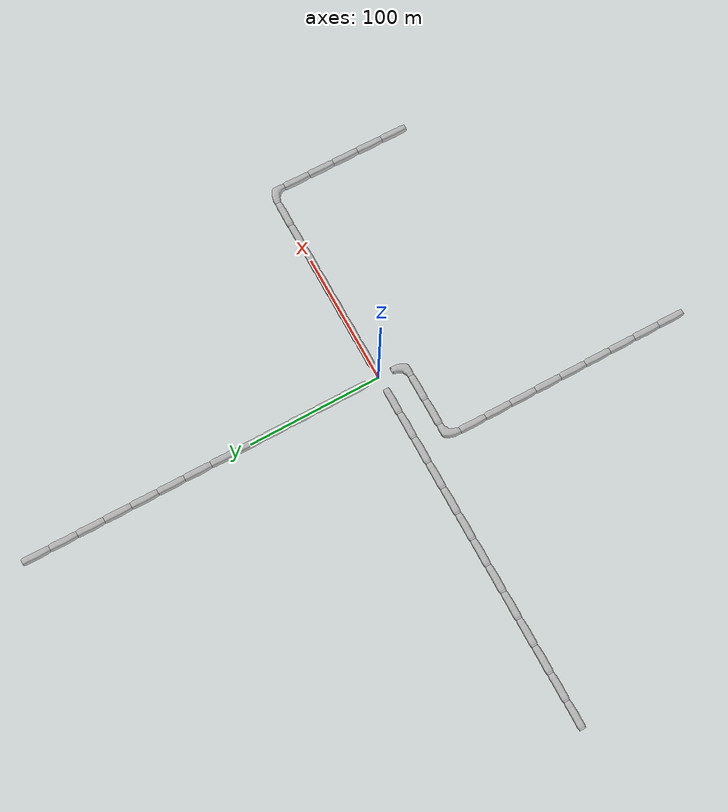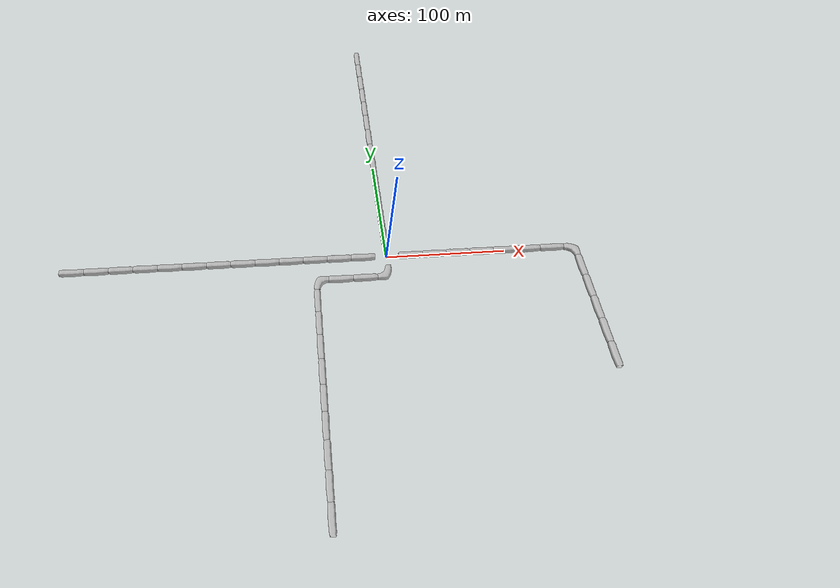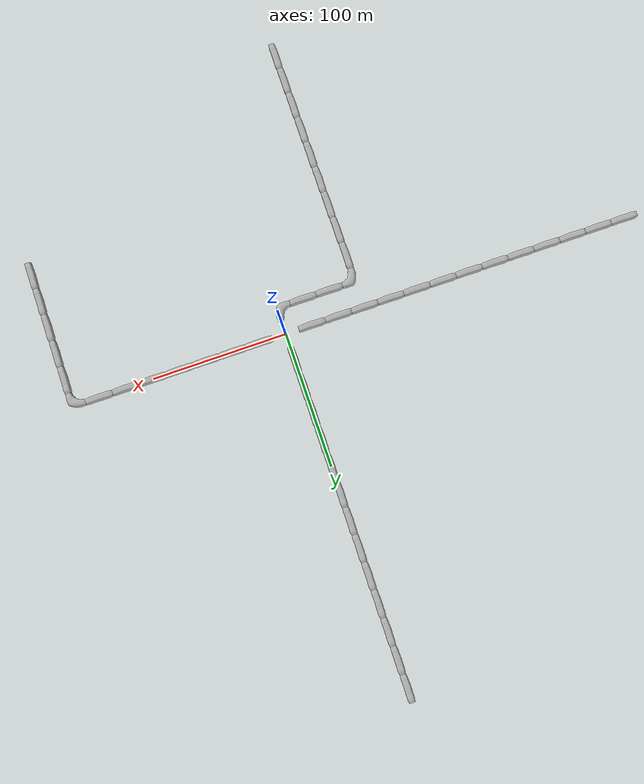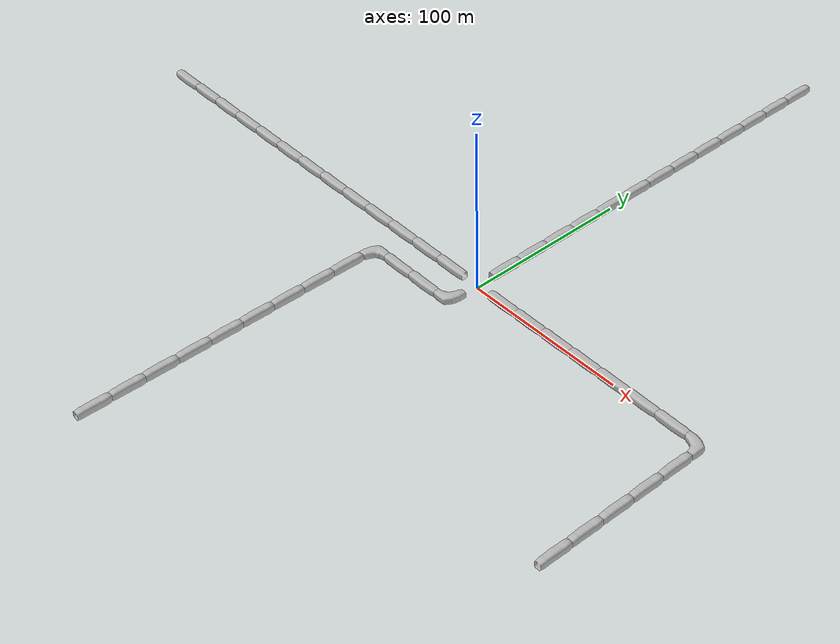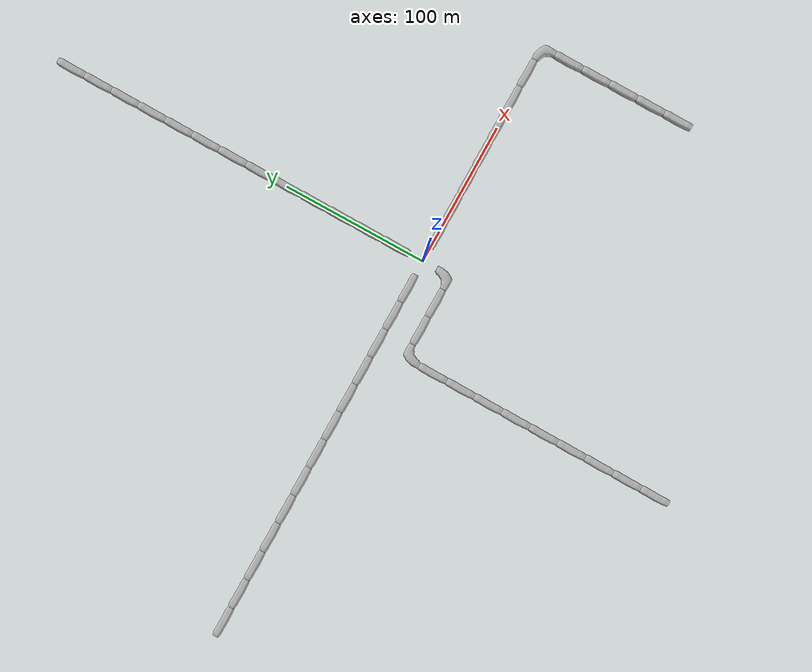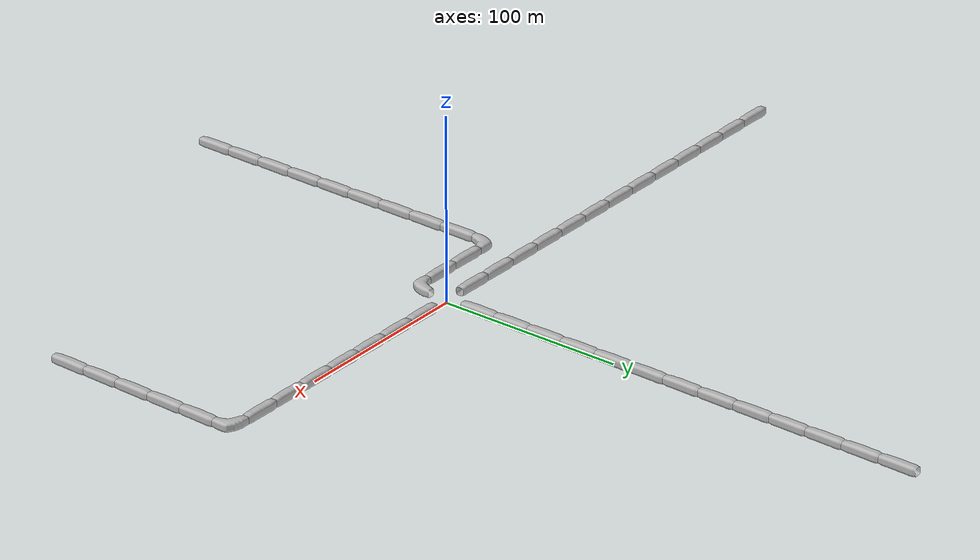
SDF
<sdf version="1.6">
 <world name="cave_1000_8">
  <include>
   <static>true</static>
   <name>cave_1_0</name>
   <pose>20 0 0 0 0 1.5707963267948966</pose>
   <uri>model://cave_straight_20m</uri>
  </include>
  <include>
   <static>true</static>
   <name>cave_2_0</name>
   <pose>40 0 0 0 0 1.5707963267948966</pose>
   <uri>model://cave_straight_20m</uri>
  </include>
  <include>
   <static>true</static>
   <name>cave_3_0</name>
   <pose>60 0 0 0 0 1.5707963267948966</pose>
   <uri>model://cave_straight_20m</uri>
  </include>
  <include>
   <static>true</static>
   <name>cave_4_0</name>
   <pose>80 0 0 0 0 1.5707963267948966</pose>
   <uri>model://cave_straight_20m</uri>
  </include>
  <include>
   <static>true</static>
   <name>cave_5_0</name>
   <pose>100 0 0 0 0 1.5707963267948966</pose>
   <uri>model://cave_straight_20m</uri>
  </include>
  <include>
   <static>true</static>
   <name>cave_6_0</name>
   <pose>120 0 0 0 0 1.5707963267948966</pose>
   <uri>model://cave_straight_20m</uri>
  </include>
  <include>
   <static>true</static>
   <name>cave_7_0</name>
   <pose>140 0 0 0 0 1.5707963267948966</pose>
   <uri>model://cave_straight_20m</uri>
  </include>
  <include>
   <static>true</static>
   <name>cave_8_0</name>
   <pose>160 0 0 0 0 3.141592653589793</pose>
   <uri>model://cave_L_20m</uri>
  </include>
  <include>
   <static>true</static>
   <name>cave_8_-1</name>
   <pose>160 -20 0 0 0 0.0</pose>
   <uri>model://cave_straight_20m</uri>
  </include>
  <include>
   <static>true</static>
   <name>cave_8_-2</name>
   <pose>160 -40 0 0 0 0.0</pose>
   <uri>model://cave_straight_20m</uri>
  </include>
  <include>
   <static>true</static>
   <name>cave_8_-3</name>
   <pose>160 -60 0 0 0 0.0</pose>
   <uri>model://cave_straight_20m</uri>
  </include>
  <include>
   <static>true</static>
   <name>cave_8_-4</name>
   <pose>160 -80 0 0 0 0.0</pose>
   <uri>model://cave_straight_20m</uri>
  </include>
  <include>
   <static>true</static>
   <name>cave_8_-5</name>
   <pose>160 -100 0 0 0 0.0</pose>
   <uri>model://cave_straight_20m</uri>
  </include>
  <include>
   <static>true</static>
   <name>cave_0_-1</name>
   <pose>0 -20 0 0 0 1.5707963267948966</pose>
   <uri>model://cave_L_20m</uri>
  </include>
  <include>
   <static>true</static>
   <name>cave_-1_-1</name>
   <pose>-20 -20 0 0 0 1.5707963267948966</pose>
   <uri>model://cave_straight_20m</uri>
  </include>
  <include>
   <static>true</static>
   <name>cave_-2_-1</name>
   <pose>-40 -20 0 0 0 1.5707963267948966</pose>
   <uri>model://cave_straight_20m</uri>
  </include>
  <include>
   <static>true</static>
   <name>cave_-3_-1</name>
   <pose>-60 -20 0 0 0 -1.5707963267948966</pose>
   <uri>model://cave_L_20m</uri>
  </include>
  <include>
   <static>true</static>
   <name>cave_-3_-2</name>
   <pose>-60 -40 0 0 0 0.0</pose>
   <uri>model://cave_straight_20m</uri>
  </include>
  <include>
   <static>true</static>
   <name>cave_-3_-3</name>
   <pose>-60 -60 0 0 0 0.0</pose>
   <uri>model://cave_straight_20m</uri>
  </include>
  <include>
   <static>true</static>
   <name>cave_-3_-4</name>
   <pose>-60 -80 0 0 0 0.0</pose>
   <uri>model://cave_straight_20m</uri>
  </include>
  <include>
   <static>true</static>
   <name>cave_-3_-5</name>
   <pose>-60 -100 0 0 0 0.0</pose>
   <uri>model://cave_straight_20m</uri>
  </include>
  <include>
   <static>true</static>
   <name>cave_-3_-6</name>
   <pose>-60 -120 0 0 0 0.0</pose>
   <uri>model://cave_straight_20m</uri>
  </include>
  <include>
   <static>true</static>
   <name>cave_-3_-7</name>
   <pose>-60 -140 0 0 0 0.0</pose>
   <uri>model://cave_straight_20m</uri>
  </include>
  <include>
   <static>true</static>
   <name>cave_-3_-8</name>
   <pose>-60 -160 0 0 0 0.0</pose>
   <uri>model://cave_straight_20m</uri>
  </include>
  <include>
   <static>true</static>
   <name>cave_-3_-9</name>
   <pose>-60 -180 0 0 0 0.0</pose>
   <uri>model://cave_straight_20m</uri>
  </include>
  <include>
   <static>true</static>
   <name>cave_-3_-10</name>
   <pose>-60 -200 0 0 0 0.0</pose>
   <uri>model://cave_straight_20m</uri>
  </include>
  <include>
   <static>true</static>
   <name>cave_-1_0</name>
   <pose>-20 0 0 0 0 1.5707963267948966</pose>
   <uri>model://cave_straight_20m</uri>
  </include>
  <include>
   <static>true</static>
   <name>cave_-2_0</name>
   <pose>-40 0 0 0 0 1.5707963267948966</pose>
   <uri>model://cave_straight_20m</uri>
  </include>
  <include>
   <static>true</static>
   <name>cave_-3_0</name>
   <pose>-60 0 0 0 0 1.5707963267948966</pose>
   <uri>model://cave_straight_20m</uri>
  </include>
  <include>
   <static>true</static>
   <name>cave_-4_0</name>
   <pose>-80 0 0 0 0 1.5707963267948966</pose>
   <uri>model://cave_straight_20m</uri>
  </include>
  <include>
   <static>true</static>
   <name>cave_-5_0</name>
   <pose>-100 0 0 0 0 1.5707963267948966</pose>
   <uri>model://cave_straight_20m</uri>
  </include>
  <include>
   <static>true</static>
   <name>cave_-6_0</name>
   <pose>-120 0 0 0 0 1.5707963267948966</pose>
   <uri>model://cave_straight_20m</uri>
  </include>
  <include>
   <static>true</static>
   <name>cave_-7_0</name>
   <pose>-140 0 0 0 0 1.5707963267948966</pose>
   <uri>model://cave_straight_20m</uri>
  </include>
  <include>
   <static>true</static>
   <name>cave_-8_0</name>
   <pose>-160 0 0 0 0 1.5707963267948966</pose>
   <uri>model://cave_straight_20m</uri>
  </include>
  <include>
   <static>true</static>
   <name>cave_-9_0</name>
   <pose>-180 0 0 0 0 1.5707963267948966</pose>
   <uri>model://cave_straight_20m</uri>
  </include>
  <include>
   <static>true</static>
   <name>cave_-10_0</name>
   <pose>-200 0 0 0 0 1.5707963267948966</pose>
   <uri>model://cave_straight_20m</uri>
  </include>
  <include>
   <static>true</static>
   <name>cave_-11_0</name>
   <pose>-220 0 0 0 0 1.5707963267948966</pose>
   <uri>model://cave_straight_20m</uri>
  </include>
  <include>
   <static>true</static>
   <name>cave_-12_0</name>
   <pose>-240 0 0 0 0 1.5707963267948966</pose>
   <uri>model://cave_straight_20m</uri>
  </include>
  <include>
   <static>true</static>
   <name>cave_-13_0</name>
   <pose>-260 0 0 0 0 1.5707963267948966</pose>
   <uri>model://cave_straight_20m</uri>
  </include>
  <include>
   <static>true</static>
   <name>cave_0_1</name>
   <pose>0 20 0 0 0 0.0</pose>
   <uri>model://cave_straight_20m</uri>
  </include>
  <include>
   <static>true</static>
   <name>cave_0_2</name>
   <pose>0 40 0 0 0 0.0</pose>
   <uri>model://cave_straight_20m</uri>
  </include>
  <include>
   <static>true</static>
   <name>cave_0_3</name>
   <pose>0 60 0 0 0 0.0</pose>
   <uri>model://cave_straight_20m</uri>
  </include>
  <include>
   <static>true</static>
   <name>cave_0_4</name>
   <pose>0 80 0 0 0 0.0</pose>
   <uri>model://cave_straight_20m</uri>
  </include>
  <include>
   <static>true</static>
   <name>cave_0_5</name>
   <pose>0 100 0 0 0 0.0</pose>
   <uri>model://cave_straight_20m</uri>
  </include>
  <include>
   <static>true</static>
   <name>cave_0_6</name>
   <pose>0 120 0 0 0 0.0</pose>
   <uri>model://cave_straight_20m</uri>
  </include>
  <include>
   <static>true</static>
   <name>cave_0_7</name>
   <pose>0 140 0 0 0 0.0</pose>
   <uri>model://cave_straight_20m</uri>
  </include>
  <include>
   <static>true</static>
   <name>cave_0_8</name>
   <pose>0 160 0 0 0 0.0</pose>
   <uri>model://cave_straight_20m</uri>
  </include>
  <include>
   <static>true</static>
   <name>cave_0_9</name>
   <pose>0 180 0 0 0 0.0</pose>
   <uri>model://cave_straight_20m</uri>
  </include>
  <include>
   <static>true</static>
   <name>cave_0_10</name>
   <pose>0 200 0 0 0 0.0</pose>
   <uri>model://cave_straight_20m</uri>
  </include>
  <include>
   <static>true</static>
   <name>cave_0_11</name>
   <pose>0 220 0 0 0 0.0</pose>
   <uri>model://cave_straight_20m</uri>
  </include>
  <include>
   <static>true</static>
   <name>cave_0_12</name>
   <pose>0 240 0 0 0 0.0</pose>
   <uri>model://cave_straight_20m</uri>
  </include>
  <include>
   <static>true</static>
   <name>cave_0_13</name>
   <pose>0 260 0 0 0 0.0</pose>
   <uri>model://cave_straight_20m</uri>
  </include>
 </world>
</sdf>

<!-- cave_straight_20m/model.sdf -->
<sdf version="1.6">
  <model name="cave_straight_20m">
    <static>true</static>
    <link name="base">
      <pose>0 0 0 0 0 0</pose>
      <collision name="base_collision">
        <pose>0 0 0 0 0 0</pose>
        <geometry>
          <mesh>
            <uri>model://cave_straight_20m/meshes/cave_straight_20m.dae</uri>
          </mesh>
        </geometry>
        <surface>
          <contact>
             <collide_bitmask>0xffff</collide_bitmask>
          </contact>
          <friction>
            <ode>
              <mu>100</mu>
              <mu2>50</mu2>
            </ode>
          </friction>
        </surface>
      </collision>
      <visual name="base_visual">
        <pose>0 0 0 0 0 0</pose>
        <cast_shadows>false</cast_shadows>
        <geometry>
          <mesh>
            <uri>model://cave_straight_20m/meshes/cave_straight_20m.dae</uri>
          </mesh>
        </geometry>
      </visual>
    </link>
  </model>
</sdf>

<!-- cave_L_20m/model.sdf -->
<sdf version="1.6">
  <model name="cave_L_20m">
    <static>true</static>
    <link name="base">
      <pose>0 0 0 0 0 0</pose>
      <collision name="base_collision">
        <pose>0 0 0 0 0 0</pose>
        <geometry>
          <mesh>
            <uri>model://cave_L_20m/meshes/cave_L_20m.dae</uri>
          </mesh>
        </geometry>
        <surface>
          <contact>
             <collide_bitmask>0xffff</collide_bitmask>
          </contact>
          <friction>
            <ode>
              <mu>100</mu>
              <mu2>50</mu2>
            </ode>
          </friction>
        </surface>
      </collision>
      <visual name="base_visual">
        <pose>0 0 0 0 0 0</pose>
        <cast_shadows>false</cast_shadows>
        <geometry>
          <mesh>
            <uri>model://cave_L_20m/meshes/cave_L_20m.dae</uri>
          </mesh>
        </geometry>
      </visual>
    </link>
  </model>
</sdf>
